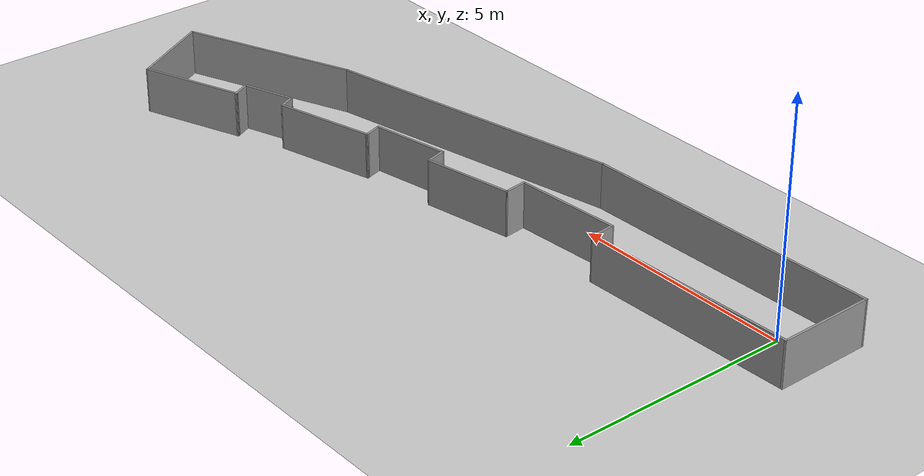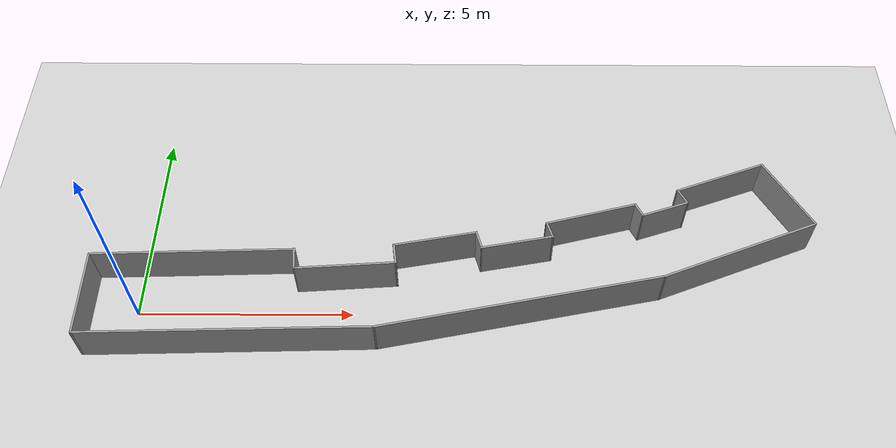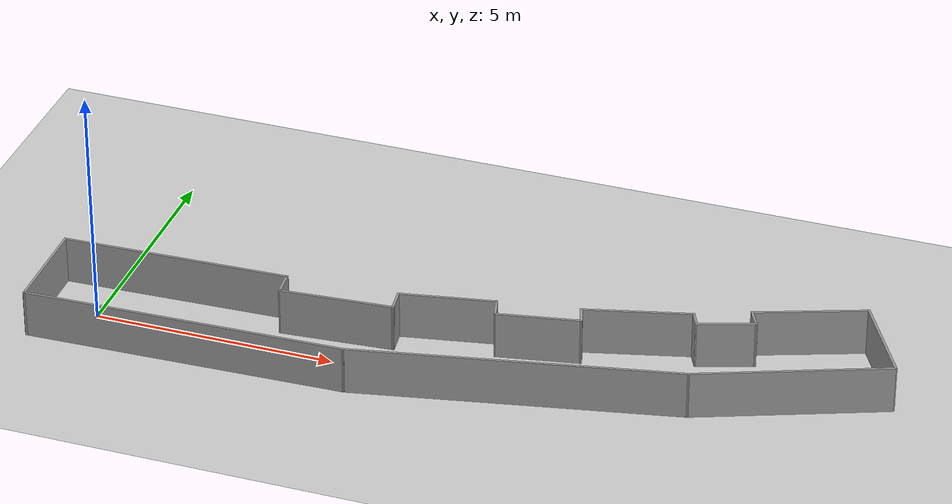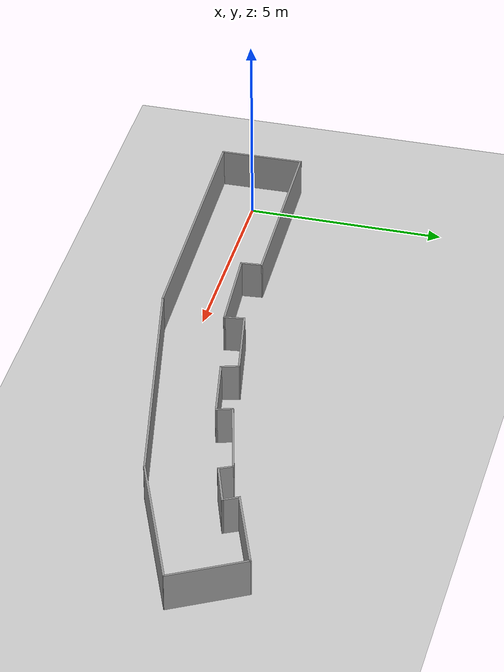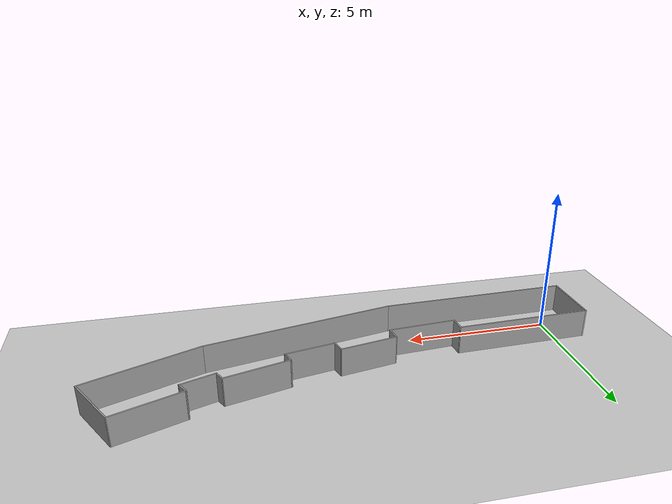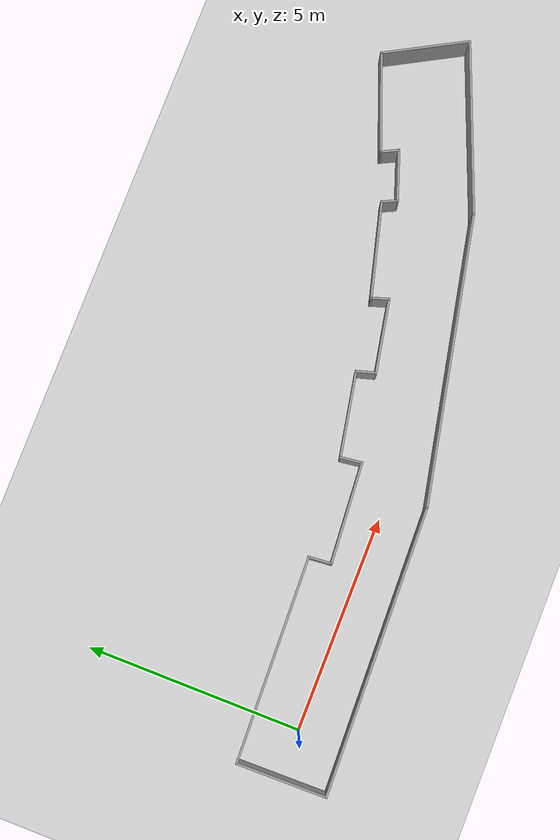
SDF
<sdf version="1.6">
 <world name="default">
  <light name="sun" type="directional">
   <pose>0 0 10 0 -0 0</pose>
   <diffuse>0.8 0.8 0.8 1</diffuse>
   <specular>0.2 0.2 0.2 1</specular>
   <attenuation>
    <range>1000</range>
    <constant>0.9</constant>
    <linear>0.01</linear>
    <quadratic>0.001</quadratic>
   </attenuation>
   <direction>-0.5 0.1 -0.9</direction>
  </light>
  <model name="ground_plane">
   <static>1</static>
   <link name="link">
    <collision name="collision">
     <geometry><plane><normal>0 0 1</normal><size>100 100</size></plane></geometry>
     <surface><friction><ode><mu>100</mu><mu2>50</mu2></ode></friction></surface>
    </collision>
    <visual name="visual">
     <cast_shadows>0</cast_shadows>
     <geometry><plane><normal>0 0 1</normal><size>100 100</size></plane></geometry>
     <material>
      <script><uri>file://media/materials/scripts/gazebo.material</uri><name>Gazebo/Grey</name></script>
     </material>
    </visual>
   </link>
  </model>
  <gravity>0 0 -9.8</gravity>
  <magnetic_field>6e-06 2.3e-05 -4.2e-05</magnetic_field>
  <atmosphere type="adiabatic"/>
  <physics name="default_physics" default="0" type="ode">
   <max_step_size>0.001</max_step_size>
   <real_time_factor>1</real_time_factor>
   <real_time_update_rate>1000</real_time_update_rate>
  </physics>
  <scene><ambient>0.4 0.4 0.4 1</ambient><background>0.7 0.7 0.7 1</background><shadows>1</shadows></scene>
  <spherical_coordinates>
   <surface_model>EARTH_WGS84</surface_model>
   <latitude_deg>0</latitude_deg>
   <longitude_deg>0</longitude_deg>
   <elevation>0</elevation>
   <heading_deg>0</heading_deg>
  </spherical_coordinates>
  <model name="itiGang">
   <pose>7.36371 1.3512 0 0 -0 0</pose>
   <link name="Wall_0">
    <collision name="Wall_0_Collision">
     <geometry><box><size>2.11869 0.05 1</size></box></geometry>
     <pose>0 0 0.5 0 -0 0</pose>
    </collision>
    <visual name="Wall_0_Visual">
     <pose>0 0 0.5 0 -0 0</pose>
     <geometry><box><size>2.11869 0.05 1</size></box></geometry>
     <material>
      <script><uri>file://media/materials/scripts/gazebo.material</uri><name>Gazebo/Grey</name></script>
      <ambient>1 1 1 1</ambient>
     </material>
    </visual>
    <pose>-8.43733 -1.36519 0 0 0 -1.55629</pose>
   </link>
   <link name="Wall_1">
    <collision name="Wall_1_Collision">
     <geometry><box><size>6.68346 0.05 1</size></box></geometry>
     <pose>0 0 0.5 0 -0 0</pose>
    </collision>
    <visual name="Wall_1_Visual">
     <pose>0 0 0.5 0 -0 0</pose>
     <geometry><box><size>6.68346 0.05 1</size></box></geometry>
     <material>
      <script><uri>file://media/materials/scripts/gazebo.material</uri><name>Gazebo/Grey</name></script>
      <ambient>1 1 1 1</ambient>
     </material>
    </visual>
    <pose>-5.10683 -2.30819 0 0 -0 0.02744</pose>
   </link>
   <link name="Wall_12">
    <collision name="Wall_12_Collision">
     <geometry><box><size>2.06476 0.05 1</size></box></geometry>
     <pose>0 0 0.5 0 -0 0</pose>
    </collision>
    <visual name="Wall_12_Visual">
     <pose>0 0 0.5 0 -0 0</pose>
     <geometry><box><size>2.06476 0.05 1</size></box></geometry>
     <material>
      <script><uri>file://media/materials/scripts/gazebo.material</uri><name>Gazebo/Grey</name></script>
      <ambient>1 1 1 1</ambient>
     </material>
    </visual>
    <pose>7.95717 1.50881 0 0 -0 2.07486</pose>
   </link>
   <link name="Wall_13">
    <collision name="Wall_13_Collision">
     <geometry><box><size>2.34074 0.05 1</size></box></geometry>
     <pose>0 0 0.5 0 -0 0</pose>
    </collision>
    <visual name="Wall_13_Visual">
     <pose>0 0 0.5 0 -0 0</pose>
     <geometry><box><size>2.34074 0.05 1</size></box></geometry>
     <material>
      <script><uri>file://media/materials/scripts/gazebo.material</uri><name>Gazebo/Grey</name></script>
      <ambient>1 1 1 1</ambient>
     </material>
    </visual>
    <pose>6.39867 1.98781 0 0 0 -2.782</pose>
   </link>
   <link name="Wall_14">
    <collision name="Wall_14_Collision">
     <geometry><box><size>0.457743 0.05 1</size></box></geometry>
     <pose>0 0 0.5 0 -0 0</pose>
    </collision>
    <visual name="Wall_14_Visual">
     <pose>0 0 0.5 0 -0 0</pose>
     <geometry><box><size>0.457743 0.05 1</size></box></geometry>
     <material>
      <script><uri>file://media/materials/scripts/gazebo.material</uri><name>Gazebo/Grey</name></script>
      <ambient>1 1 1 1</ambient>
     </material>
    </visual>
    <pose>5.41767 1.40231 0 0 0 -1.10824</pose>
   </link>
   <link name="Wall_15">
    <collision name="Wall_15_Collision">
     <geometry><box><size>1.20894 0.05 1</size></box></geometry>
     <pose>0 0 0.5 0 -0 0</pose>
    </collision>
    <visual name="Wall_15_Visual">
     <pose>0 0 0.5 0 -0 0</pose>
     <geometry><box><size>1.20894 0.05 1</size></box></geometry>
     <material>
      <script><uri>file://media/materials/scripts/gazebo.material</uri><name>Gazebo/Grey</name></script>
      <ambient>1 1 1 1</ambient>
     </material>
    </visual>
    <pose>4.96117 1.02981 0 0 0 -2.80756</pose>
   </link>
   <link name="Wall_16">
    <collision name="Wall_16_Collision">
     <geometry><box><size>0.403683 0.05 1</size></box></geometry>
     <pose>0 0 0.5 0 -0 0</pose>
    </collision>
    <visual name="Wall_16_Visual">
     <pose>0 0 0.5 0 -0 0</pose>
     <geometry><box><size>0.403683 0.05 1</size></box></geometry>
     <material>
      <script><uri>file://media/materials/scripts/gazebo.material</uri><name>Gazebo/Grey</name></script>
      <ambient>1 1 1 1</ambient>
     </material>
    </visual>
    <pose>4.33767 0.99931 0 0 -0 2.01546</pose>
   </link>
   <link name="Wall_17">
    <collision name="Wall_17_Collision">
     <geometry><box><size>2.25219 0.05 1</size></box></geometry>
     <pose>0 0 0.5 0 -0 0</pose>
    </collision>
    <visual name="Wall_17_Visual">
     <pose>0 0 0.5 0 -0 0</pose>
     <geometry><box><size>2.25219 0.05 1</size></box></geometry>
     <material>
      <script><uri>file://media/materials/scripts/gazebo.material</uri><name>Gazebo/Grey</name></script>
      <ambient>1 1 1 1</ambient>
     </material>
    </visual>
    <pose>3.19717 0.87781 0 0 0 -2.88351</pose>
   </link>
   <link name="Wall_18">
    <collision name="Wall_18_Collision">
     <geometry><box><size>0.449487 0.05 1</size></box></geometry>
     <pose>0 0 0.5 0 -0 0</pose>
    </collision>
    <visual name="Wall_18_Visual">
     <pose>0 0 0.5 0 -0 0</pose>
     <geometry><box><size>0.449487 0.05 1</size></box></geometry>
     <material>
      <script><uri>file://media/materials/scripts/gazebo.material</uri><name>Gazebo/Grey</name></script>
      <ambient>1 1 1 1</ambient>
     </material>
    </visual>
    <pose>2.19317 0.40631 0 0 0 -1.26328</pose>
   </link>
   <link name="Wall_19">
    <collision name="Wall_19_Collision">
     <geometry><box><size>1.73767 0.05 1</size></box></geometry>
     <pose>0 0 0.5 0 -0 0</pose>
    </collision>
    <visual name="Wall_19_Visual">
     <pose>0 0 0.5 0 -0 0</pose>
     <geometry><box><size>1.73767 0.05 1</size></box></geometry>
     <material>
      <script><uri>file://media/materials/scripts/gazebo.material</uri><name>Gazebo/Grey</name></script>
      <ambient>1 1 1 1</ambient>
     </material>
    </visual>
    <pose>1.42517 0.05631 0 0 0 -2.9514</pose>
   </link>
   <link name="Wall_2">
    <collision name="Wall_2_Collision">
     <geometry><box><size>6.72835 0.05 1</size></box></geometry>
     <pose>0 0 0.5 0 -0 0</pose>
    </collision>
    <visual name="Wall_2_Visual">
     <pose>0 0 0.5 0 -0 0</pose>
     <geometry><box><size>6.72835 0.05 1</size></box></geometry>
     <material>
      <script><uri>file://media/materials/scripts/gazebo.material</uri><name>Gazebo/Grey</name></script>
      <ambient>1 1 1 1</ambient>
     </material>
    </visual>
    <pose>1.47867 -1.54019 0 0 -0 0.204149</pose>
   </link>
   <link name="Wall_20">
    <collision name="Wall_20_Collision">
     <geometry><box><size>0.493007 0.05 1</size></box></geometry>
     <pose>0 0 0.5 0 -0 0</pose>
    </collision>
    <visual name="Wall_20_Visual">
     <pose>0 0 0.5 0 -0 0</pose>
     <geometry><box><size>0.493007 0.05 1</size></box></geometry>
     <material>
      <script><uri>file://media/materials/scripts/gazebo.material</uri><name>Gazebo/Grey</name></script>
      <ambient>1 1 1 1</ambient>
     </material>
    </visual>
    <pose>0.535674 0.10981 0 0 -0 1.84972</pose>
   </link>
   <link name="Wall_21">
    <collision name="Wall_21_Collision">
     <geometry><box><size>2.00046 0.05 1</size></box></geometry>
     <pose>0 0 0.5 0 -0 0</pose>
    </collision>
    <visual name="Wall_21_Visual">
     <pose>0 0 0.5 0 -0 0</pose>
     <geometry><box><size>2.00046 0.05 1</size></box></geometry>
     <material>
      <script><uri>file://media/materials/scripts/gazebo.material</uri><name>Gazebo/Grey</name></script>
      <ambient>1 1 1 1</ambient>
     </material>
    </visual>
    <pose>-0.483326 0.14031 0 0 0 -2.95335</pose>
   </link>
   <link name="Wall_22">
    <collision name="Wall_22_Collision">
     <geometry><box><size>0.540805 0.05 1</size></box></geometry>
     <pose>0 0 0.5 0 -0 0</pose>
    </collision>
    <visual name="Wall_22_Visual">
     <pose>0 0 0.5 0 -0 0</pose>
     <geometry><box><size>0.540805 0.05 1</size></box></geometry>
     <material>
      <script><uri>file://media/materials/scripts/gazebo.material</uri><name>Gazebo/Grey</name></script>
      <ambient>1 1 1 1</ambient>
     </material>
    </visual>
    <pose>-1.41083 -0.28569 0 0 0 -1.44619</pose>
   </link>
   <link name="Wall_23">
    <collision name="Wall_23_Collision">
     <geometry><box><size>2.36802 0.05 1</size></box></geometry>
     <pose>0 0 0.5 0 -0 0</pose>
    </collision>
    <visual name="Wall_23_Visual">
     <pose>0 0 0.5 0 -0 0</pose>
     <geometry><box><size>2.36802 0.05 1</size></box></geometry>
     <material>
      <script><uri>file://media/materials/scripts/gazebo.material</uri><name>Gazebo/Grey</name></script>
      <ambient>1 1 1 1</ambient>
     </material>
    </visual>
    <pose>-2.53633 -0.61269 0 0 0 -3.06949</pose>
   </link>
   <link name="Wall_24">
    <collision name="Wall_24_Collision">
     <geometry><box><size>0.569042 0.05 1</size></box></geometry>
     <pose>0 0 0.5 0 -0 0</pose>
    </collision>
    <visual name="Wall_24_Visual">
     <pose>0 0 0.5 0 -0 0</pose>
     <geometry><box><size>0.569042 0.05 1</size></box></geometry>
     <material>
      <script><uri>file://media/materials/scripts/gazebo.material</uri><name>Gazebo/Grey</name></script>
      <ambient>1 1 1 1</ambient>
     </material>
    </visual>
    <pose>-3.71533 -0.43769 0 0 -0 1.65954</pose>
   </link>
   <link name="Wall_25">
    <collision name="Wall_25_Collision">
     <geometry><box><size>4.75172 0.05 1</size></box></geometry>
     <pose>0 0 0.5 0 -0 0</pose>
    </collision>
    <visual name="Wall_25_Visual">
     <pose>0 0 0.5 0 -0 0</pose>
     <geometry><box><size>4.75172 0.05 1</size></box></geometry>
     <material>
      <script><uri>file://media/materials/scripts/gazebo.material</uri><name>Gazebo/Grey</name></script>
      <ambient>1 1 1 1</ambient>
     </material>
    </visual>
    <pose>-6.08783 -0.25519 0 0 0 -3.10926</pose>
   </link>
   <link name="Wall_3">
    <collision name="Wall_3_Collision">
     <geometry><box><size>4.01477 0.05 1</size></box></geometry>
     <pose>0 0 0.5 0 -0 0</pose>
    </collision>
    <visual name="Wall_3_Visual">
     <pose>0 0 0.5 0 -0 0</pose>
     <geometry><box><size>4.01477 0.05 1</size></box></geometry>
     <material>
      <script><uri>file://media/materials/scripts/gazebo.material</uri><name>Gazebo/Grey</name></script>
      <ambient>1 1 1 1</ambient>
     </material>
    </visual>
    <pose>6.58867 -0.12569 0 0 -0 0.381209</pose>
   </link>
   <static>1</static>
  </model>
 </world>
</sdf>
